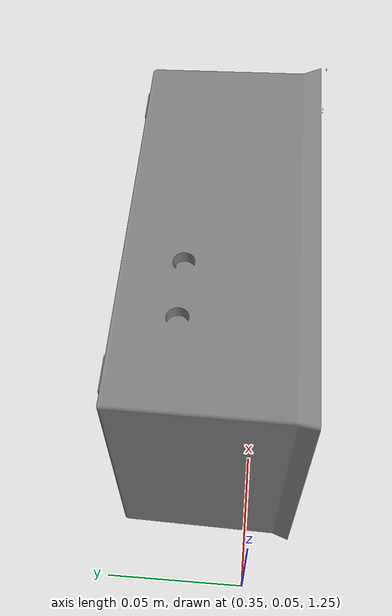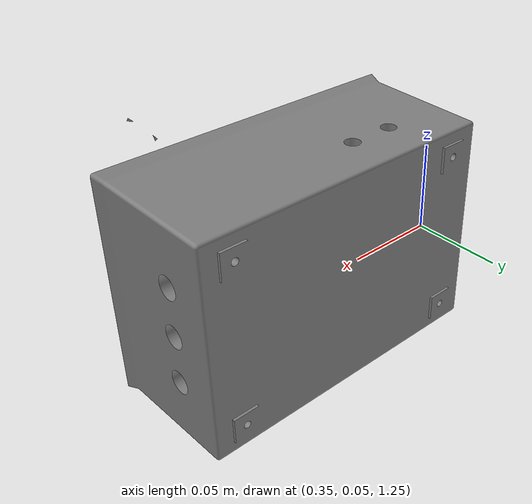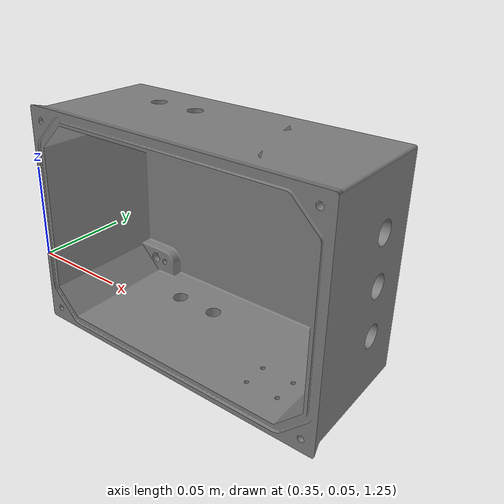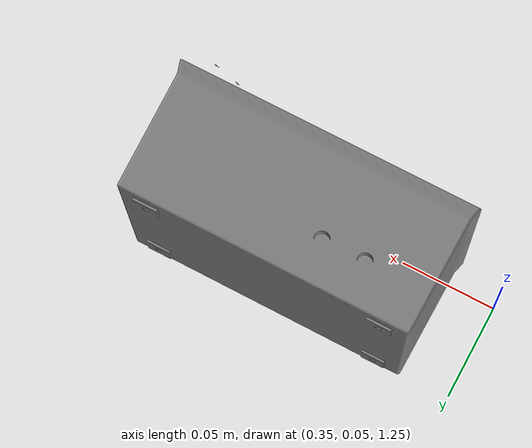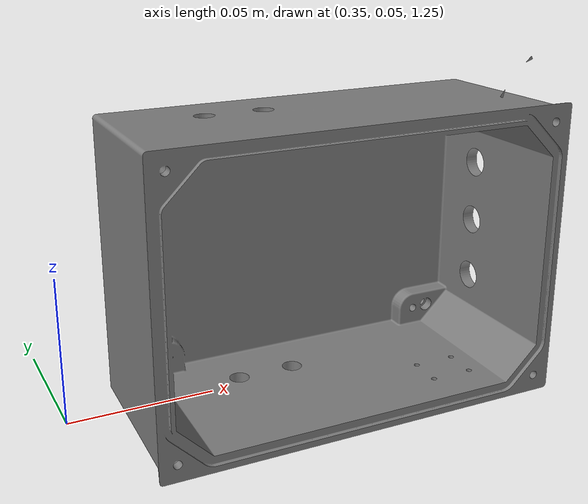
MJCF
<mujoco model="nist_ftc_07_asme1_ap242-e2">
  <default>
    <default class="nist_box_visual">
      <geom group="2" type="mesh" contype="0" conaffinity="0"/>
    </default>
    <default class="nist_box_collision">
      <geom group="3" type="mesh" density="7800" friction="0.95 0.3 0.1" solimp="0.998 0.998 0.001" solref="0.0001 1" />
    </default>
  </default>
  <asset>
    <mesh name="nist_ftc_07_asme1_ap242-e2" file="../objects/bigym/nist_misc/nist_ftc_07_asme1_ap242-e2/nist_ftc_07_asme1_ap242-e2.obj" scale="0.0005 0.0005 0.0005"/>
    <mesh name="nist_ftc_07_asme1_ap242-e2_collision_0" file="../objects/bigym/nist_misc/nist_ftc_07_asme1_ap242-e2/nist_ftc_07_asme1_ap242-e2_collision_0.obj" scale="0.0005 0.0005 0.0005"/>
    <mesh name="nist_ftc_07_asme1_ap242-e2_collision_1" file="../objects/bigym/nist_misc/nist_ftc_07_asme1_ap242-e2/nist_ftc_07_asme1_ap242-e2_collision_1.obj" scale="0.0005 0.0005 0.0005"/>
    <mesh name="nist_ftc_07_asme1_ap242-e2_collision_2" file="../objects/bigym/nist_misc/nist_ftc_07_asme1_ap242-e2/nist_ftc_07_asme1_ap242-e2_collision_2.obj" scale="0.0005 0.0005 0.0005"/>
    <mesh name="nist_ftc_07_asme1_ap242-e2_collision_3" file="../objects/bigym/nist_misc/nist_ftc_07_asme1_ap242-e2/nist_ftc_07_asme1_ap242-e2_collision_3.obj" scale="0.0005 0.0005 0.0005"/>
    <mesh name="nist_ftc_07_asme1_ap242-e2_collision_4" file="../objects/bigym/nist_misc/nist_ftc_07_asme1_ap242-e2/nist_ftc_07_asme1_ap242-e2_collision_4.obj" scale="0.0005 0.0005 0.0005"/>
    <mesh name="nist_ftc_07_asme1_ap242-e2_collision_5" file="../objects/bigym/nist_misc/nist_ftc_07_asme1_ap242-e2/nist_ftc_07_asme1_ap242-e2_collision_5.obj" scale="0.0005 0.0005 0.0005"/>
    <mesh name="nist_ftc_07_asme1_ap242-e2_collision_6" file="../objects/bigym/nist_misc/nist_ftc_07_asme1_ap242-e2/nist_ftc_07_asme1_ap242-e2_collision_6.obj" scale="0.0005 0.0005 0.0005"/>
    <mesh name="nist_ftc_07_asme1_ap242-e2_collision_9" file="../objects/bigym/nist_misc/nist_ftc_07_asme1_ap242-e2/nist_ftc_07_asme1_ap242-e2_collision_9.obj" scale="0.0005 0.0005 0.0005"/>
  </asset>
  <worldbody>
    <body name="nist_ftc_07_asme1_ap242-e2" pos="0.53 0.1 1.23" quat="0 0 0 1">
      <freejoint/>
      <geom mesh="nist_ftc_07_asme1_ap242-e2" class="nist_box_visual"/>
      <geom mesh="nist_ftc_07_asme1_ap242-e2_collision_0" rgba="0.8590111926879213 0.032370379934392735 0.9747042839359848 1" class="nist_box_collision"/>
      <geom mesh="nist_ftc_07_asme1_ap242-e2_collision_1" rgba="0.6674851432796519 0.04431308516997101 0.7908025058478539 1" class="nist_box_collision"/>
      <geom mesh="nist_ftc_07_asme1_ap242-e2_collision_2" rgba="0.035994878867127156 0.6877430919363282 0.5484979038385875 1" class="nist_box_collision"/>
      <geom mesh="nist_ftc_07_asme1_ap242-e2_collision_3" rgba="0.7942736711778999 0.6689431827183643 0.46041710242674583 1" class="nist_box_collision"/>
      <geom mesh="nist_ftc_07_asme1_ap242-e2_collision_4" rgba="0.3398429193148058 0.25995495361961773 0.09638272315104501 1" class="nist_box_collision"/>
      <geom mesh="nist_ftc_07_asme1_ap242-e2_collision_5" rgba="0.9885627884337831 0.7706916638814273 0.8525864021268802 1" class="nist_box_collision"/>
      <geom mesh="nist_ftc_07_asme1_ap242-e2_collision_6" rgba="0.6480358067548699 0.5998748116974815 0.6109511423433888 1" class="nist_box_collision"/>
      <geom mesh="nist_ftc_07_asme1_ap242-e2_collision_9" rgba="0.11160245003910907 0.2529347948455788 0.3074668031217783 1" class="nist_box_collision"/>
    </body>
  </worldbody>
</mujoco>
